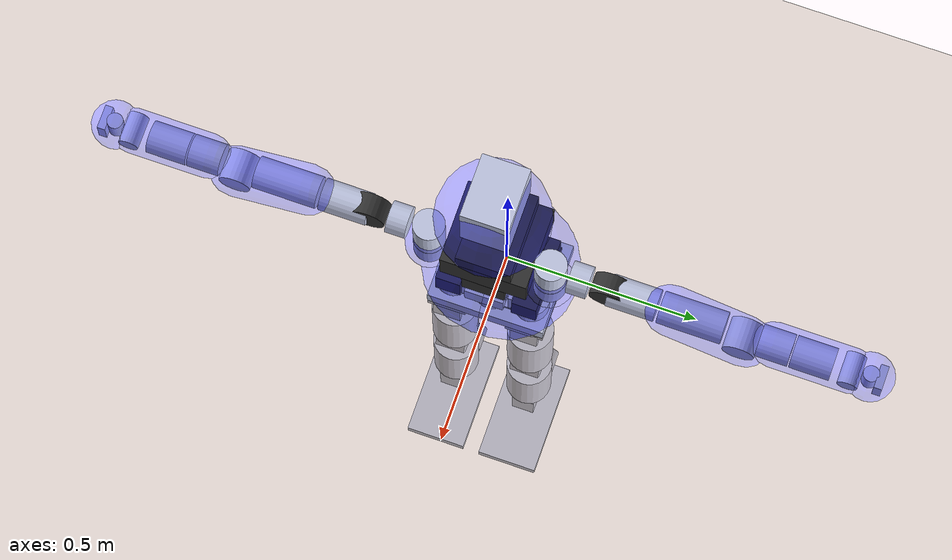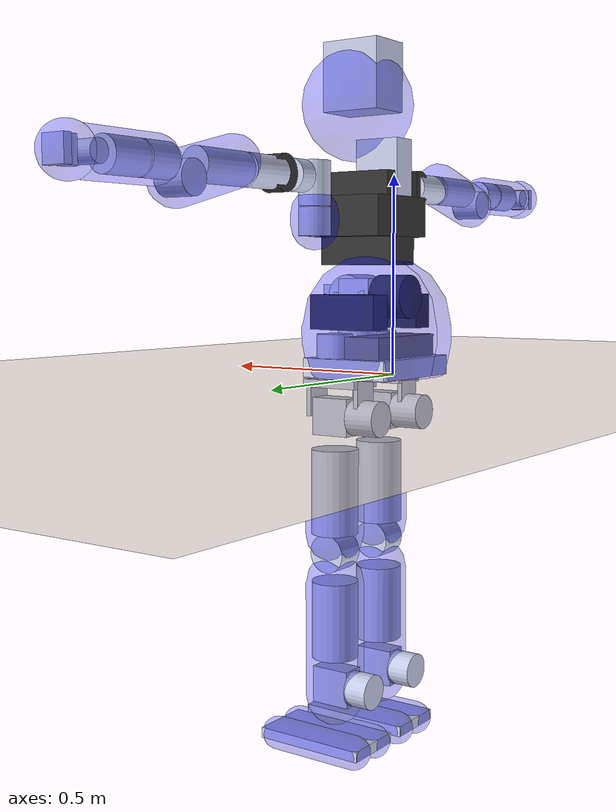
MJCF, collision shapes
<mujoco model="dyros_tocabi">
    <include file="simulation_scene.xml"/>

    <asset>
        <mesh name="Pelvis_link" file="Pelvis_link2.STL" scale="0.001 0.001 0.001"/>
        <mesh name="HipRoll_R_link" file="HipRoll_R_link.STL" />
        <mesh name="HipCenter_R_Link" file="HipCenter_R_Link.STL" />
        <mesh name="Thigh_R_Link" file="Thigh_R_Link.STL" />
        <mesh name="Knee_R_Link" file="Knee_R_Link.STL" />
        <mesh name="AnkleCenter_R_Link" file="AnkleCenter_R_Link.STL" />
        <mesh name="AnkleRoll_R_Link" file="AnkleRoll_R_Link.STL" />
        <mesh name="HipRoll_L_Link" file="HipRoll_L_Link.STL" />
        <mesh name="HipCenter_L_Link" file="HipCenter_L_Link.STL" />
        <mesh name="Thigh_L_Link" file="Thigh_L_Link.STL" />
        <mesh name="Knee_L_Link" file="Knee_L_Link.STL" />
        <mesh name="AnkleCenter_L_Link" file="AnkleCenter_L_Link.STL" />
        <mesh name="AnkleRoll_L_Link" file="AnkleRoll_L_Link.STL" />
        <mesh name="waist1" file="waistyaw.STL" scale="0.001 0.001 0.001"/>
        <mesh name="waist2" file="waist2.STL" />
        <mesh name="upperbody" file="upperbody.STL" />
        <mesh name="R_shoulder1" file="R_shoulder1.STL" />
        <mesh name="R_shoulder2" file="R_shoulder2.STL" />
        <mesh name="R_shoulder3" file="R_shoulder3.STL" />
        <mesh name="R_arm" file="R_arm.STL" />
        <mesh name="R_elbow" file="R_elbow.STL" />
        <mesh name="R_forearm" file="R_forearm.STL" />
        <mesh name="R_wrist1" file="R_wrist1.STL" />
        <mesh name="L_shoulder1" file="L_shoulder1.STL" />
        <mesh name="L_shoulder2" file="L_shoulder2.STL" />
        <mesh name="L_shoulder3" file="L_shoulder3.STL" />
        <mesh name="L_arm" file="L_arm.STL" />
        <mesh name="L_elbow" file="L_elbow.STL" />
        <mesh name="L_forearm" file="L_forearm.STL" />
        <mesh name="L_wrist1" file="L_wrist1.STL" />
        <mesh name="neck" file="neck.STL" />
        <mesh name="head" file="head.STL" scale="0.001 0.001 0.001"/>
        <mesh name="hand" file="wrist2joint.STL" scale="0.001 0.001 0.001"/>
        <mesh name="Foot_Link" file="Foot_Link.STL"/>

        <!--texture type="skybox" builtin="gradient" width="128" height="128" rgb1="1 1 1" rgb2="0 0 0"/-->
        <texture type="skybox" builtin="gradient" width="128" height="128" rgb1="0.4 0.6 0.8" rgb2="0 0 0"/>
        <texture name="texgeom" type="cube" builtin="flat" mark="cross" width="128" height="128" rgb1="0.6 0.6 0.6" rgb2="0.6 0.6 0.6" markrgb="1 1 1"/>
        <texture name="texplane" type="2d" builtin="checker" rgb1=".4 .4 .4" rgb2=".6 .6 .6" width="512" height="512"/>
        <material name='geom' texture="texgeom" texuniform="true"/>
        <material name='MatPlane' reflectance='0.3' texture="texplane" texrepeat="1 1" texuniform="true"/>
        <material name='MatPlane2' reflectance='0.3' />
    </asset>

    <worldbody>
        <geom name="ground" type="plane" pos="0 0 0" size="10 10 .05" rgba="0.7 0.6 0.5 1" material="MatPlane2" friction="0.8 0.8 0.8" group="3" contype="1" conaffinity="2"/>
        <light directional="true" diffuse=".8 .8 .8" pos="0 0 10" dir="0 0 -10"/>
        <light directional="true" diffuse=".3 .3 .3" pos="10 -10 5" dir="-10 10 -5"/>
        <body name="base_link">
            <joint name="virtual_joint" type="free" limited='false' frictionloss="0" damping="0" stiffness="0" armature="0"/>
            <inertial pos="0.07809 0 0.03985" mass="14.6343" fullinertia="0.101833182 0.072400662 0.144478157 -0.000070812 -0.003831096 0.000079272" />
            <geom class="viz" pos="0.11 0 0.02" rgba="0.20313 0.20313 0.20313 1" quat="0.5 0.5 0.5 0.5" mesh="Pelvis_link" />
            <geom size="0.045 0.044" pos="0.11 0 0.039" type="cylinder" class="cls"  contype="2" conaffinity="0"/>
            <geom size="0.045 0.055" pos="0.11 0.1025 0.05" type="cylinder" class="cls"  contype="2" conaffinity="0"/>
            <geom size="0.045 0.055" pos="0.11 -0.1025 0.05" type="cylinder" class="cls"  contype="2" conaffinity="0"/>
            <geom size="0.12 0.1525 0.025" pos="0.052 0 0.02" type="box" class="cls"  contype="2" conaffinity="0"/>
            <geom size="0.05 0.13 0.05" pos="0.01 0 0.05" type="box" group="1"/>
            <site name="Pelvis_IMU" type="cylinder" size="0.005 0.005" group="4" rgba=".1 .1 .9 1"/>
            <!-- Visualizing a CBF for Self Collision (Left Pelvis) -->
            <geom class="viz" name="Left_Pelvis" size = "0.18 0.025" pos="0.05 0.02 0.1" rgba="0 0 1 0.3" type="capsule"/>
            <!-- Visualizing a CBF for Self Collision (Right Pelvis) -->
            <geom class="viz" name="Right_Pelvis" size = "0.18 0.025" pos="0.05 -0.02 0.1" rgba="0 0 1 0.3" type="capsule"/>
            <body name="L_HipRoll_Link" pos="0.11 0.1025 -0.1025">
                <inertial pos="-0.06477 0 0.05149" mass="3.2148" fullinertia="0.01821 0.03121 0.2928 -1.676E-07 -0.0007745 -4.53E-09" />
                <joint name="L_HipYaw_Joint" pos="0 0 0" axis="0 0 1" limited="true" range="-3.14 3.14" class="shg20_100_2so"/>
                <geom class="viz" rgba="0.20313 0.20313 0.20313 1" mesh="HipRoll_L_Link" />
                <geom size="0.045 0.04" pos="-0.1 0 0" quat="0.707107 0 0.707107 0" type="cylinder" class="cls" contype="2" conaffinity="0"/>
                <geom size="0.077 0.05 0.01" pos="-0.016 0 0.085" type="box" class="cls" contype="2" conaffinity="0"/>
                <geom size="0.006 0.036 0.0475" pos="0.055 0 0.0475" type="box" class="cls" contype="2" conaffinity="0"/>
                <geom size="0.006 0.036 0.0475" pos="-0.087 0 0.0475" type="box" class="cls" contype="2" conaffinity="0"/>
                <body name="L_HipCenter_Link" pos="0 0 0">
                    <inertial pos="-0.04801 0.0022 2e-05" mass="3.204" fullinertia="0.3553 0.009161 0.00876 1.725E-08 -3.236E-06 -4.778E-06" />
                    <joint name="L_HipRoll_Joint" pos="0 0 0" axis="1 0 0" limited="true" range="-3.14 3.14" class="shg20_100_2so"/>
                    <geom class="viz" rgba="0.20313 0.20313 0.20313 1" mesh="HipCenter_L_Link" />
                    <geom size="0.05225 0.03 0.0475" pos="-0.0045 0 0" type="box" class="cls" contype="2" conaffinity="0"/>
                    <body name="L_Thigh_Link" pos="0 0 0">
                        <inertial pos="-0.00042 0.00032 -0.18904" mass="6.4392" fullinertia="0.2987 0.7088 0.00982 -4.284E-05 -0.000196 0.002406" />
                        <joint name="L_HipPitch_Joint" pos="0 0 0" axis="0 1 0" limited="true" range="-3.14 3.14" class="shg20_100_2so"/>
                        <geom class="viz" rgba="0.85938 0.07813 0.23438 1" mesh="Thigh_L_Link" />
                        <geom class="cls" size="0.049 0.038815" pos="0 0 -0.35" quat="0.707107 0.707107 0 0" type="cylinder" contype="2" conaffinity="0"/>
                        <geom class="cls" size="0.06 0.10875" pos="0 0 -0.1923" type="cylinder" contype="2" conaffinity="0"/>
                        <geom class="viz" size="0.033 0.02 0.06875" pos="0 0 -0.1723" type="box" rgba="0.20313 0.20313 0.20313 1" />
                        <!-- Visualizing a CBF for Self Collision (Left Upper Leg) -->
                        <geom class="viz" name="Left_Upper_Leg" size ="0.075 0.17" pos="0 0 -0.1323" rgba="0 0 1 0.3" type="capsule" />
                        <body name="L_Knee_Link" pos="0 0 -0.35">
                            <inertial pos="0.00429 -0.00214 -0.1428" mass="4.6596" fullinertia="0.1506 0.5588 0.007451 -2.887E-05 -0.002607 -0.001486" />
                            <joint name="L_Knee_Joint" pos="0 0 0" axis="0 1 0" limited="true" range="-3.14 3.14" class="shg20_100_2so"/>
                            <geom class="viz" rgba="0.85938 0.07813 0.23438 1" mesh="Knee_L_Link" />
                            <geom class="cls" size="0.06 0.1" pos="0 0 -0.175" type="cylinder" contype="2" conaffinity="0"/>
                            <geom class="viz" size="0.028 0.02 0.06875" pos="0 0 -0.1603" type="box" rgba="0.20313 0.20313 0.20313 1" />
                            <!-- Visualizing a CBF for Self Collision (Left Lower Leg) -->
                            <geom class="viz" name="Left_Lower_Leg" size ="0.075 0.15" pos="0 0 -0.23" rgba="0 0 1 0.3" type="capsule" />
                            <body name="L_AnkleCenter_Link" pos="0 0 -0.35">
                                <inertial pos="-0.00419 0.0018 -0.0003" mass="3.012" fullinertia="0.002857 0.4135 0.003345 -1.422E-07 2.222E-06 4.611E-06" />
                                <joint name="L_AnklePitch_Joint" pos="0 0 0" axis="0 1 0" limited="true" range="-3.14 3.14" class="shg20_100_2so"/>
                                <geom class="viz" rgba="0.20313 0.20313 0.20313 1" mesh="AnkleCenter_L_Link" />
                                <geom class="cls" size="0.05225 0.03 0.0475" pos="-0.0045 0 0" type="box"  contype="2" conaffinity="0"/>
                                <body name="L_AnkleRoll_Link" pos="0 0 0">
                                    <inertial pos="-0.05196 0.00005 -0.0219" mass="1.517112" fullinertia="0.418697 0.006211405 0.008575514 1.5176E-08 -0.001095976 -5.435E-08" />
                                    <joint name="L_AnkleRoll_Joint" pos="0 0 0" axis="1 0 0" limited="true" range="-3.14 3.14" class="shd20_100_2sh"/>
                                    <geom class="viz" rgba="0.85938 0.07813 0.23438 1" mesh="AnkleRoll_L_Link" />
                                    <geom class="cls" size="0.045 0.03125" pos="-0.08875 0 0" quat="0.707107 0 -0.707107 0" type="cylinder" contype="2" conaffinity="0"/>
                                    <body name="L_Foot_Link" pos="0 0 0">
                                        <inertial pos="0.0162 8e-05 -0.1209" mass="2.7912" fullinertia="0.003386409 0.012600125 0.014296 1.1237E-05 -0.000526477 -1.976E-06" />
                                        <geom class="viz" rgba="0.85938 0.07813 0.23438 1" mesh="Foot_Link" />
                                        <geom class="cls" size="0.15 0.080 0.0135" pos="0.03 0 -0.145" type="box" contype="2" conaffinity="0"/>
                                        <geom class="cls" size="0.045 0.03125" pos="-0.08875 0 0" quat="0.707107 0 -0.707107 0" type="cylinder" contype="2" conaffinity="0"/>
                                        <site class="FTsensor" name="LF_FT" pos="0 0 -0.09"/>
                                        <!-- Visualizing a CBF for Self Collision (Left Inner Foot) -->
                                        <geom class="viz" name="Left_Inner_Foot" size ="0.0432 0.12" pos="0.03 -0.0455 -0.15" quat="0.707107 0 -0.707107 0" rgba="0 0 1 0.3" type="capsule" />
                                        <!-- Visualizing a CBF for Self Collision (Left Outer Foot) -->
                                        <geom class="viz" name="Left_Outer_Foot" size ="0.0432 0.12" pos="0.03 0.0455 -0.15" quat="0.707107 0 -0.707107 0" rgba="0 0 1 0.3" type="capsule" />
                                    </body>
                                </body>
                            </body>
                        </body>
                    </body>
                </body>
            </body>

            <body name="R_HipRoll_Link" pos="0.11 -0.1025 -0.1025">
                <inertial pos="-0.06477 0 0.05149" mass="3.2148" fullinertia="0.01821 0.03121 0.2928 -1.676E-07 -0.0007745 -4.53E-09" />
                <joint name="R_HipYaw_Joint" pos="0 0 0" axis="0 0 1" limited="true" range="-3.14 3.14" class="shg20_100_2so"/>
                <geom class="viz" rgba="0.20313 0.20313 0.20313 1" mesh="HipRoll_R_link" />
                <geom class="cls" size="0.045 0.04" pos="-0.1 0 0" quat="0.707107 0 0.707107 0" type="cylinder" contype="2" conaffinity="0"/>
                <geom class="cls" size="0.077 0.05 0.01" pos="-0.016 0 0.085" type="box" contype="2" conaffinity="0"/>
                <geom class="cls" size="0.006 0.036 0.0475" pos="0.055 0 0.0475" type="box" contype="2" conaffinity="0"/>
                <geom class="cls" size="0.006 0.036 0.0475" pos="-0.087 0 0.0475" type="box" contype="2" conaffinity="0"/>
                <body name="R_HipCenter_Link" pos="0 0 0">
                    <inertial pos="-0.04801 -0.0022 2e-05" mass="3.204" fullinertia="0.3553 0.009161 0.00876 1.725E-08 -3.236E-06 -4.778E-06" />
                    <joint name="R_HipRoll_Joint" pos="0 0 0" axis="1 0 0" limited="true" range="-3.14 3.14" class="shg20_100_2so"/>
                    <geom class="viz" rgba="0.20313 0.20313 0.20313 1" mesh="HipCenter_R_Link" />
                    <geom class="cls" size="0.05225 0.03 0.0475" pos="-0.0045 0 0" type="box" contype="2" conaffinity="0"/>
                    <body name="R_Thigh_Link" pos="0 0 0">
                        <inertial pos="-0.00042 -0.00032 -0.18904" mass="6.4392" fullinertia="0.2987 0.7088 0.00982 -4.284E-05 -0.000196 0.002406" />
                        <joint name="R_HipPitch_Joint" pos="0 0 0" axis="0 1 0" limited="true" range="-3.14 3.14" class="shg20_100_2so"/>
                        <geom class="viz" rgba="0.85938 0.07813 0.23438 1" mesh="Thigh_R_Link" />
                        <geom class="cls" size="0.049 0.038815" pos="0 0 -0.35" quat="0.707107 0.707107 0 0" type="cylinder" contype="2" conaffinity="0"/>
                        <geom class="cls" size="0.06 0.10875" pos="0 0 -0.1923" type="cylinder" contype="2" conaffinity="0"/>
                        <geom class="viz" size="0.033 0.02 0.06875" pos="0 0 -0.1723" type="box" rgba="0.20313 0.20313 0.20313 1" />
                        <!-- Visualizing a CBF for Self Collision (Right Upper Leg) -->
                        <geom class="viz" name="Right_Upper_Leg" size ="0.075 0.17" pos="0 0 -0.1323" rgba="0 0 1 0.3" type="capsule" />
                        <body name="R_Knee_Link" pos="0 0 -0.35">
                            <inertial pos="0.00429 0.00214 -0.1428" mass="4.6596" fullinertia="0.1506 0.5588 0.007451 -2.887E-05 -0.002607 -0.001486" />
                            <joint name="R_Knee_Joint" pos="0 0 0" axis="0 1 0" limited="true" range="-3.14 3.14" class="shg20_100_2so"/>
                            <geom class="viz" rgba="0.85938 0.07813 0.23438 1" mesh="Knee_R_Link" />
                            <geom class="cls" size="0.06 0.1" pos="0 0 -0.175" type="cylinder" contype="2" conaffinity="0"/>
                            <geom class="viz" size="0.028 0.02 0.06875" pos="0 0 -0.1603" type="box" rgba="0.20313 0.20313 0.20313 1" />
                            <!-- Visualizing a CBF for Self Collision (Right Lower Leg) -->
                            <geom class="viz" name="Right_Lower_Leg" size ="0.075 0.15" pos="0 0 -0.23" rgba="0 0 1 0.3" type="capsule" />
                            <body name="R_AnkleCenter_Link" pos="0 0 -0.35">
                                <inertial pos="-0.00419 -0.0018 -0.0003" mass="3.012" fullinertia="0.002857 0.4135 0.003345 -1.422E-07 2.222E-06 4.611E-06" />
                                <joint name="R_AnklePitch_Joint" pos="0 0 0" axis="0 1 0" limited="true" range="-3.14 3.14" class="shg20_100_2so"/>
                                <geom class="viz" rgba="0.20313 0.20313 0.20313 1" mesh="AnkleCenter_R_Link" />
                                <geom class="cls" size="0.05225 0.03 0.0475" pos="-0.0045 0 0" type="box" contype="2" conaffinity="0"/>
                                <body name="R_AnkleRoll_Link" pos="0 0 0">
                                    <inertial pos="-0.05196 0.00005 -0.0219" mass="1.517112" fullinertia="0.418697 0.006211405 0.008575514 1.5176E-08 -0.001095976 -5.435E-08" />
                                    <joint name="R_AnkleRoll_Joint" pos="0 0 0" axis="1 0 0" limited="true" range="-3.14 3.14" class="shd20_100_2sh"/>
                                    <geom class="viz" rgba="0.85938 0.07813 0.23438 1" mesh="AnkleRoll_R_Link" />
                                    <geom class="cls" size="0.045 0.03125" pos="-0.08875 0 0" quat="0.707107 0 -0.707107 0" type="cylinder" contype="2" conaffinity="0"/>
                                    <body name="R_Foot_Link" pos="0 0 0">
                                        <inertial pos="0.0162 8e-05 -0.1209" mass="2.7912" fullinertia="0.003386409 0.012600125 0.014296 1.1237E-05 -0.000526477 -1.976E-06" />
                                        <geom class="viz" rgba="0.85938 0.07813 0.23438 1" mesh="Foot_Link" />
                                        <geom class="cls" size="0.15 0.080 0.0135" pos="0.03 0 -0.145" type="box" contype="2" conaffinity="0"/>
                                        <geom class="cls" size="0.045 0.03125" pos="-0.08875 0 0" quat="0.707107 0 -0.707107 0" type="cylinder"  contype="2" conaffinity="0"/>
                                        <site class="FTsensor" name="RF_FT" pos="0 0 -0.09"/>
                                        <!-- Visualizing a CBF for Self Collision (Right Inner Foot) -->
                                        <geom class="viz" name="Right_Inner_Foot" size ="0.0432 0.12" pos="0.03 0.0455 -0.15" quat="0.707107 0 -0.707107 0" rgba="0 0 1 0.3" type="capsule" />
                                        <!-- Visualizing a CBF for Self Collision (Right Outer Foot) -->
                                        <geom class="viz" name="Right_Outer_Foot" size ="0.0432 0.12" pos="0.03 -0.0455 -0.15" quat="0.707107 0 -0.707107 0" rgba="0 0 1 0.3" type="capsule" />
                                    </body>
                                </body>
                            </body>
                        </body>
                    </body>
                </body>
            </body>

            <body name="Waist1_Link" pos="0.11 0 0.1979">
                <inertial pos="0 0 -0.03647" mass="1.076664" fullinertia="0.003744227 0.002030963 1.007723743 -0.000023489 0.000037149 -0.000424890" />
                <joint name="Waist1_Joint" pos="0 0 0" axis="0 0 1" limited="true" range="-2.094 2.094" class="shg25_100_2so"/>
                <geom class="viz" rgba="0.85938 0.07813 0.23438 1" pos="0 0 -0.085" quat="0 0.707107 0 0.707107" mesh="waist1" />
                <geom class="cls" size="0.05 0.01" pos="0 0 -0.096" type="cylinder" contype="2" conaffinity="0"/>
                <geom class="cls" size="0.047 0.065 0.005" pos="0 0 -0.081" type="box" contype="2" conaffinity="0"/>
                <geom class="cls" size="0.047 0.005 0.0455" pos="0 0.06 -0.0405" type="box" contype="2" conaffinity="0"/>
                <geom class="cls" size="0.047 0.005 0.0455" pos="0 -0.06 -0.0405" type="box" contype="2" conaffinity="0"/>

                <geom class="viz" size="0.095 0.032 0.0435" pos="-0.04 -0.099 -0.038" rgba="0.20313 0.20313 0.20313 1" type="box"/>
                <geom class="viz" size="0.095 0.032 0.0435" pos="-0.04 0.099 -0.038" rgba="0.20313 0.20313 0.20313 1" type="box"/>

                <body name="Waist2_Link" pos="0 0 0">
                    <inertial pos="-0.00029 0 0" mass="4.5024" fullinertia="0.006020606 1.011708561 0.007561688 0.000011504 -0.000000053 0.000001147" />
                    <joint name="Waist2_Joint" pos="0 0 0" axis="0 1 0" limited="true" range="-2.094 2.094" class="shg25_100_2so"/>
                    <geom class="viz" rgba="0.20313 0.20313 0.20313 1" mesh="waist2" />
                    <geom class="cls" size="0.055 0.05" quat="0.707107 0.707107 0 0" type="cylinder" contype="2" conaffinity="0"/>
                    <geom class="cls" size="0.05 0.05 0.03" pos="0.02 0 0" type="box" contype="2" conaffinity="0"/>
                    <geom class="cls" size="0.045 0.05 0.0455" pos="-0.02 0 0" type="box" contype="2" conaffinity="0"/>
                    <body name="Upperbody_Link" pos="0 0 0">
                        <inertial pos="-0.07294 0 0.16798" quat="0.999909 -0.000268355 -0.0135223 5.11667e-05" mass="21.76056" diaginertia="0.563198 0.563198 0.563198" />
                        <joint name="Upperbody_Joint" pos="0 0 0" axis="-1 0 0" limited="true" range="-2.094 2.094" class="shg25_100_2so"/>
                        <geom class="viz" rgba="0.85938 0.07813 0.23438 1" mesh="upperbody" />
                        <geom class="viz" size="0.105 0.11 0.05" pos="-0.03 0 0.2" type="box" rgba="0.20313 0.20313 0.20313 1" />
                        <geom class="viz" size="0.105 0.055 0.035" pos="-0.03 0 0.115" type="box" rgba="0.20313 0.20313 0.20313 1" />
                        <geom class="viz" size="0.105 0.07 0.03" pos="-0.03 0 0.28" type="box" rgba="0.20313 0.20313 0.20313 1" />
                        <geom class="cls" size="0.105 0.11 0.05" pos="-0.03 0 0.2" type="box"  contype="2" conaffinity="0"/>
                        <geom class="cls" size="0.105 0.055 0.035" pos="-0.03 0 0.115" type="box" contype="2" conaffinity="0"/>
                        <geom class="cls" size="0.105 0.07 0.03" pos="-0.03 0 0.28" type="box" contype="2" conaffinity="0"/>
                        <geom class="cls" size="0.06 0.035 0.07" pos="-0.08 0 0.32" type="box" contype="2" conaffinity="0"/>
                        <geom class="viz" size="0.054 0.045" pos="-0.115 0 0" quat="0.707107 0 0.707107 0" type="cylinder" rgba="0.20313 0.20313 0.20313 1" />
                        <geom class="cls" size="0.04 0.035" pos="0.023 0.154 0.185" type="cylinder" contype="2" conaffinity="0"/>
                        <geom class="cls" size="0.04 0.035" pos="0.023 -0.154 0.185" type="cylinder" contype="2" conaffinity="0"/>
                        <!-- Visualizing a CBF for Self Collision (Left Upper Body) -->
                        <geom class="viz" name="Left_Upper_Body" size="0.06 0.015" pos="0.023 0.154 0.19" rgba="0 0 1 0.3" type="capsule"/>
                        <!-- Visualizing a CBF for Self Collision (Right Upper Body) -->
                        <geom class="viz" name="Right_Upper_Body" size="0.06 0.015" pos="0.023 -0.154 0.19" rgba="0 0 1 0.3" type="capsule"/>

                        <body name="L_Shoulder1_Link" pos="0.023 0.154 0.2275">
                            <inertial pos="-3e-05 0.00397 0.06029" mass="2.01144" fullinertia="0.001925606 0.001936576 0.185330098 0.000001433 0.000002313 0.000078962" />
                            <joint name="L_Shoulder1_Joint" pos="0 0 0" axis="0 0 1" limited="true" range="-2.09 1.54" class="shg17_100_2so"/>
                            <geom class="viz" rgba="0.85938 0.07813 0.23438 1" mesh="L_shoulder1" />
                            <geom class="cls" size="0.04 0.055" pos="0 0 0.05" type="cylinder" contype="2" conaffinity="0"/>
                            <body name="L_Shoulder2_Link" pos="0 0.0341 0.065">
                                <inertial pos="0.00107 0.0491 -1e-05" mass="0.48192" fullinertia="0.000989903 0.184275853 0.001067575 0.000028237 -0.000000465 0.000000133" />
                                <joint name="L_Shoulder2_Joint" pos="0 0 0" axis="0 1 0" limited="true" range="-3.14159 3.14159" class="shg17_100_2so"/>
                                <geom class="viz" rgba="0.20313 0.20313 0.20313 1" mesh="L_shoulder2" />
                                <geom class="cls" size="0.04 0.025" pos="0 0.04 0" quat="0.707107 0.707107 0 0" type="cylinder" contype="2" conaffinity="0"/>
                                <body name="L_Shoulder3_Link" pos="0 0.115 0">
                                    <inertial pos="0.00262 0.04826 0.00023" mass="3.481692" fullinertia="0.192093159 0.002493784 0.008296854 -0.000365084 -0.000002746 -0.000023821" />
                                    <joint name="L_Shoulder3_Joint" pos="0 0 0" axis="-1 0 0" limited="true" range="-1.9199 1.9199" class="shg17_100_2so"/>
                                    <geom class="viz" rgba="0.20313 0.20313 0.20313 1" mesh="L_shoulder3" />
                                    <geom class="cls" size="0.04 0.06" pos="0 0.06 0" quat="0.707107 0.707107 0 0" type="cylinder" contype="2" conaffinity="0"/>
                                    <geom size="0.045 0.027" pos="0 0 0" quat="0.707107 0 0.707107 0" rgba="0.20313 0.20313 0.20313 1" type="cylinder" class="viz"/>
                                    <body name="L_Armlink_Link" pos="0 0.1281 0">
                                        <inertial pos="-0.01896 0.11642 -0.0119" mass="0.702204" fullinertia="0.002878609 0.184381923 0.003117058 0.000302586 -0.000036001 0.000398377" />
                                        <joint name="L_Armlink_Joint" pos="0 0 0" axis="0 1 0" limited="true" range="-3.14159 3.14159" class="shg17_100_2so"/>
                                        <geom class="viz" rgba="0.85938 0.07813 0.23438 1" mesh="L_arm" />
                                        <geom class="cls" size="0.04 0.08" pos="0 0.08 0" quat="0.707107 0.707107 0 0" type="cylinder" contype="2" conaffinity="0"/>
                                        <!-- Visualizing a CBF for Self Collision (Left Upper Arm) -->
                                        <geom class="viz" name="Left_Upper_Arm" size ="0.062 0.1" pos="0.005 0.12 -0.01" quat="0.793353 0.608761 0 0" rgba="0 0 1 0.3" type="capsule" />
                                        <body name="L_Elbow_Link" pos="0 0.207 -0.0325">
                                            <inertial pos="-0.00136 0.05256 0.01764" mass="2.478132" fullinertia="0.055865466 0.001895543 0.005958821 0.000151764 0.000055158 0.001530917" />
                                            <joint name="L_Elbow_Joint" pos="0 0 0" axis="1 0 0" limited="true" range="-3.14159 2.8" class="shg14_100_2so"/>
                                            <geom class="viz" rgba="0.20313 0.20313 0.20313 1" mesh="L_elbow" />
                                            <geom class="cls" size="0.04 0.04" pos="0 0.08 0.0325" quat="0.707107 0.707107 0 0" type="cylinder" contype="2" conaffinity="0"/>
                                            <geom class="cls" size="0.04 0.04" quat="0.707107 0 0.707107 0" type="cylinder" contype="2" conaffinity="0"/>
                                            <geom size="0.034 0.025" pos="0.003 0 0" quat="0.707107 0 0.707107 0" rgba="0.20313 0.20313 0.20313 1" type="cylinder" class="viz"/>
                                            <body name="L_Forearm_Link" pos="0 0.1244 0.0325">
                                                <inertial pos="-0.01426 0.0767 0.00033" mass="0.422808" fullinertia="0.001053636 0.049889479 0.001266418 0.000084568 0.000022117 0.000019539" />
                                                <joint name="L_Forearm_Joint" pos="0 0 0" axis="0 1 0" limited="true" range="-3.14159 3.14159" class="shg14_100_2so"/>
                                                <geom class="viz" rgba="0.85938 0.07813 0.23438 1" mesh="L_forearm" />
                                                <geom class="cls" size="0.04 0.05" pos="0 0.05 0" quat="0.707107 0.707107 0 0" type="cylinder" contype="2" conaffinity="0"/>
                                                <geom class="cls" size="0.025 0.04" pos="0 0.1451 0" quat="0.707107 0 0.707107 0" type="cylinder" contype="2" conaffinity="0"/>
                                                <!-- Visualizing a CBF for Self Collision (Left Forearm) -->
                                                <geom class="viz" name="Left_ForeArm" size ="0.055 0.1" pos="0 0.05 0" quat="0.707107 0.707107 0 0" rgba="0 0 1 0.3" type="capsule" />
                                                <body name="L_Wrist1_Link" pos="0 0.1451 0">
                                                    <inertial pos="-0.00158 0.02153 3e-05" mass="0.851076" fullinertia="0.015205197 0.000396376 0.000683187 0.000024218 -0.000000263 0.000000688" />
                                                    <joint name="L_Wrist1_Joint" pos="0 0 0" axis="1 0 0" limited="true" range="-3.14159 3.14159" class="csf_11_100_2xh_f"/>
                                                    <geom class="viz" rgba="0.20313 0.20313 0.20313 1" mesh="L_wrist1" />
                                                    <geom size="0.02 0.03" pos="0 0.046 0" type="cylinder" class="cls"  contype="2" conaffinity="0"/>
                                                    <body name="L_Wrist2_Link" pos="0 0.046 0" quat="0 0 -0.707107 0.707107">
                                                        <inertial pos="0.00063 0.0636 0.00178" mass="0.12" fullinertia="0.000865450 0.000696917 0.015377823 0 0 0" />
                                                        <joint name="L_Wrist2_Joint" pos="0 0 0" axis="0 1 0" limited="true" range="-2.094 2.094" class="csf_11_100_2xh_f"/>
                                                        <geom size="0.03 0.03 0.01" pos="0 0 -0.025" type="box" class="cls" contype="2" conaffinity="0"/>
                                                        <geom size="0.03 0.03 0.01" pos="0 0 -0.025" type="box" class="viz" rgba="0.20313 0.20313 0.20313 1" />
                                                        <site class="FTsensor" name="LH_FT" pos="0 0 -0.035"/>
                                                        <!-- Visualizing a CBF for Self Collision (Left Hand) -->
                                                        <geom class="viz" name="Left_Hand" size="0.06" rgba="0 0 1 0.3" type="sphere"/>
                                                    </body>
                                                </body>
                                            </body>
                                        </body>
                                    </body>
                                </body>
                            </body>
                        </body>
                        <body name="Neck_Link" pos="-0.036 0 0.3795">
                            <inertial pos="0 0 -0.0023" mass="0.2976" fullinertia="0.000058259 0.000036489 0.000058237 -0.000000076 0.000000268 -0.000001002" />
                            <joint name="Neck_Joint" pos="0 0 0" axis="0 0 1" limited="true" range="-1.54 1.54" class="csf_11_100_2xh_f"/>
                            <geom class="viz" rgba="0.20313 0.20313 0.20313 1" mesh="neck" />
                            <body name="Head_Link" pos="0 0 0.0275">
                                <inertial pos="0.037 0 0.071" mass="1.7004" fullinertia="0.0079 0.012 0.01 0.0 0.0025 0.0" />
                                <joint name="Head_Joint" pos="0 0 0" axis="0 1 0" limited="true" range="-1.54 1.54" class="csf_11_100_2xh_f"/>
                                <geom class="viz" rgba="0.85938 0.07813 0.23438 1" pos="0.02 0 -0.6" mesh="head" />
                                <geom class="cls" size="0.08 0.06 0.086" pos="0.02 0 0.14" type="box"  contype="2" conaffinity="0"/>
                                <!-- Visualizing a CBF for Self Collision (Head) -->
                                <geom class="viz" name="Head" size="0.142" pos="0.035 0 0.0735" rgba="0 0 1 0.3" type="sphere"/>
                            </body>
                        </body>
                        <body name="R_Shoulder1_Link" pos="0.023 -0.154 0.2275">
                            <inertial pos="-3e-05 -0.00397 0.06029" mass="2.01144" fullinertia="0.001925606 0.001936576 0.185330098 -0.000001433 0.000002313 -0.000078962" />
                            <joint name="R_Shoulder1_Joint" pos="0 0 0" axis="0 0 1" limited="true" range="-1.54 2.09" class="shg17_100_2so"/>
                            <geom class="viz" rgba="0.85938 0.07813 0.23438 1" mesh="R_shoulder1" />
                            <geom size="0.04 0.055" pos="0 0 0.05" type="cylinder" class="cls"  contype="2" conaffinity="0"/>
                            <body name="R_Shoulder2_Link" pos="0 -0.0341 0.065">
                                <inertial pos="0.00107 -0.0491 -1e-05" mass="0.48192" fullinertia="0.000989903 0.184275853 0.001067575 -0.000028237 -0.000000465 -0.000000133" />
                                <joint name="R_Shoulder2_Joint" pos="0 0 0" axis="0 -1 0" limited="true" range="-3.14159 3.14159" class="shg17_100_2so"/>
                                <geom class="viz" rgba="0.20313 0.20313 0.20313 1" mesh="R_shoulder2" />
                                <geom size="0.04 0.025" pos="0 -0.04 0" quat="0.707107 0.707107 0 0" type="cylinder" class="cls"  contype="2" conaffinity="0"/>
                                <body name="R_Shoulder3_Link" pos="0 -0.115 0">
                                    <inertial pos="0.00262 -0.04826 0.00023" mass="3.481692" fullinertia="0.192093159 0.002493784 0.008296854 0.000365084 -0.000002746 0.000023821" />
                                    <joint name="R_Shoulder3_Joint" pos="0 0 0" axis="-1 0 0" limited="true" range="-1.9199 1.9199" class="shg17_100_2so"/>
                                    <geom class="viz" rgba="0.20313 0.20313 0.20313 1" mesh="R_shoulder3" />
                                    <geom size="0.04 0.06" pos="0 -0.06 0" quat="0.707107 0.707107 0 0" type="cylinder" class="cls"  contype="2" conaffinity="0"/>
                                    <geom size="0.045 0.027" pos="0 0 0" quat="0.707107 0 0.707107 0" rgba="0.20313 0.20313 0.20313 1" type="cylinder" class="viz"/>
                                    <body name="R_Armlink_Link" pos="0 -0.1281 0">
                                        <inertial pos="-0.01896 -0.11642 -0.0119" mass="0.702204" fullinertia="0.002878609 0.184381923 0.003117058 -0.000302586 -0.000036001 -0.000398377" />
                                        <joint name="R_Armlink_Joint" pos="0 0 0" axis="0 -1 0" limited="true" range="-3.14159 3.14159" class="shg17_100_2so"/>
                                        <geom class="viz" rgba="0.85938 0.07813 0.23438 1" mesh="R_arm" />
                                        <geom size="0.04 0.08" pos="0 -0.08 0" quat="0.707107 0.707107 0 0" type="cylinder" class="cls"  contype="2" conaffinity="0"/>
                                        <!-- Visualizing a CBF for Self Collision (Right Upper Arm) -->
                                        <geom class="viz" name="Right_Upper_Arm" size ="0.062 0.1" pos="0.005 -0.12 -0.01" quat="0.793353 -0.608761 0 0" rgba="0 0 1 0.3" type="capsule" />
                                        <body name="R_Elbow_Link" pos="0 -0.207 -0.0325">
                                            <inertial pos="-0.00136 -0.05256 0.01764" mass="2.478132" fullinertia="0.055865466 0.001895543 0.005958821 -0.000151764 0.000055158 -0.001530917" />
                                            <joint name="R_Elbow_Joint" pos="0 0 0" axis="1 0 0" limited="true" range="-2.967 3.14159" class="shg14_100_2so"/>
                                            <geom class="viz" rgba="0.20313 0.20313 0.20313 1" mesh="R_elbow" />
                                            <geom size="0.04 0.04" pos="0 -0.08 0.0325" quat="0.707107 0.707107 0 0" type="cylinder" class="cls"  contype="2" conaffinity="0"/>
                                            <geom size="0.04 0.04" quat="0.707107 0 0.707107 0" type="cylinder" class="cls"  contype="2" conaffinity="0"/>
                                            <geom size="0.034 0.025" pos="0.003 0 0" quat="0.707107 0 0.707107 0" rgba="0.20313 0.20313 0.20313 1" type="cylinder" class="viz"/>
                                            <body name="R_Forearm_Link" pos="0 -0.1244 0.0325">
                                                <inertial pos="-0.01426 -0.0767 0.00033" mass="0.422808" fullinertia="0.001053636 0.049889479 0.001266418 -0.000084568 0.000022117 -0.000019539" />
                                                <joint name="R_Forearm_Joint" pos="0 0 0" axis="0 -1 0" limited="true" range="-3.14159 3.14159" class="shg14_100_2so"/>
                                                <geom class="viz" rgba="0.85938 0.07813 0.23438 1" mesh="R_forearm" />
                                                <geom size="0.04 0.05" pos="0 -0.05 0" quat="0.707107 0.707107 0 0" type="cylinder" class="cls"  contype="2" conaffinity="0"/>
                                                <geom size="0.025 0.04" pos="0 -0.1451 0" quat="0.707107 0 0.707107 0" type="cylinder" class="cls"  contype="2" conaffinity="0"/>
                                                <!-- Visualizing a CBF for Self Collision (Right Forearm) -->
                                                <geom class="viz" name="Right_ForeArm" size ="0.055 0.1" pos="0 -0.05 0" quat="0.707107 0.707107 0 0" rgba="0 0 1 0.3" type="capsule" />
                                                <body name="R_Wrist1_Link" pos="0 -0.1451 0">
                                                    <inertial pos="-0.00158 -0.02153 3e-05" mass="0.851076" fullinertia="0.015205197 0.000396376 0.000683187 -0.000024218 -0.000000263 -0.000000688" />
                                                    <joint name="R_Wrist1_Joint" pos="0 0 0" axis="1 0 0" limited="true" range="-3.14159 3.14159" class="csf_11_100_2xh_f"/>
                                                    <geom class="viz" rgba="0.20313 0.20313 0.20313 1" mesh="R_wrist1" />
                                                    <geom size="0.02 0.03" pos="0 -0.046 0" type="cylinder" class="cls"  contype="2" conaffinity="0"/>
                                                    <body name="R_Wrist2_Link" pos="0 -0.046 0" quat="0 0 0.707107 0.707107">
                                                        <inertial pos="0.00063 -0.0636 0.00178" quat="0.5 0.5 -0.5 0.5" mass="0.12" fullinertia="0.000865450 0.000696917 0.015377823 0 0 0" />
                                                        <joint name="R_Wrist2_Joint" pos="0 0 0" axis="0 -1 0" limited="true" range="-2.094 2.094" class="csf_11_100_2xh_f"/>
                                                        <geom size="0.03 0.03 0.01" pos="0 0 -0.025" type="box" class="cls"  contype="2" conaffinity="0"/>
                                                        <geom size="0.03 0.03 0.01" pos="0 0 -0.025" type="box" class="viz" rgba="0.20313 0.20313 0.20313 1" />
                                                        <site class="FTsensor" name="RH_FT" pos="0 0 -0.035"/>
                                                        <!-- Visualizing a CBF for Self Collision (Right Hand) -->
                                                        <geom class="viz" name="Right_Hand" size="0.06" rgba="0 0 1 0.3" type="sphere"/>
                                                    </body>
                                                </body>
                                            </body>
                                        </body>
                                    </body>
                                </body>
                            </body>
                        </body>
                    </body>
                </body>
            </body>
        </body>

    </worldbody>
    <actuator>
        <motor name="L_HipYaw_Motor" joint="L_HipYaw_Joint" ctrlrange="-333 333"/>
        <motor name="L_HipRoll_Motor" joint="L_HipRoll_Joint" ctrlrange="-232 232"/>
        <motor name="L_HipPitch_Motor" joint="L_HipPitch_Joint" ctrlrange="-263 263"/>
        <motor name="L_Knee_Motor" joint="L_Knee_Joint" ctrlrange="-289 289"/>
        <motor name="L_AnklePitch_Motor" joint="L_AnklePitch_Joint" ctrlrange="-222 222"/>
        <motor name="L_AnkleRoll_Motor" joint="L_AnkleRoll_Joint" ctrlrange="-166 166"/>

        <motor name="R_HipYaw_Motor" joint="R_HipYaw_Joint" ctrlrange="-333 333"/>
        <motor name="R_HipRoll_Motor" joint="R_HipRoll_Joint" ctrlrange="-232 232"/>
        <motor name="R_HipPitch_Motor" joint="R_HipPitch_Joint" ctrlrange="-263 263"/>
        <motor name="R_Knee_Motor" joint="R_Knee_Joint" ctrlrange="-289 289"/>
        <motor name="R_AnklePitch_Motor" joint="R_AnklePitch_Joint" ctrlrange="-222 222"/>
        <motor name="R_AnkleRoll_Motor" joint="R_AnkleRoll_Joint" ctrlrange="-166 166"/>

        <motor name="Waist1_Motor" joint="Waist1_Joint" ctrlrange="-303 303"/>
        <motor name="Waist2_Motor" joint="Waist2_Joint" ctrlrange="-303 303"/>
        <motor name="Upperbody_Motor" joint="Upperbody_Joint" ctrlrange="-303 303"/>

        <motor name="L_Shoulder1_Motor" joint="L_Shoulder1_Joint" ctrlrange="-64 64"/>
        <motor name="L_Shoulder2_Motor" joint="L_Shoulder2_Joint" ctrlrange="-64 64"/>
        <motor name="L_Shoulder3_Motor" joint="L_Shoulder3_Joint" ctrlrange="-64 64"/>
        <motor name="L_Armlink_Motor" joint="L_Armlink_Joint" ctrlrange="-64 64"/>
        <motor name="L_Elbow_Motor" joint="L_Elbow_Joint" ctrlrange="-23 23"/>
        <motor name="L_Forearm_Motor" joint="L_Forearm_Joint" ctrlrange="-23 23"/>
        <motor name="L_Wrist1_Motor" joint="L_Wrist1_Joint" ctrlrange="-10 10"/>
        <motor name="L_Wrist2_Motor" joint="L_Wrist2_Joint" ctrlrange="-10 10"/>

        <motor name="Neck_Motor" joint="Neck_Joint" ctrlrange="-10 10"/>
        <motor name="Head_Motor" joint="Head_Joint" ctrlrange="-10 10"/>

        <motor name="R_Shoulder1_Motor" joint="R_Shoulder1_Joint" ctrlrange="-64 64"/>
        <motor name="R_Shoulder2_Motor" joint="R_Shoulder2_Joint" ctrlrange="-64 64"/>
        <motor name="R_Shoulder3_Motor" joint="R_Shoulder3_Joint" ctrlrange="-64 64"/>
        <motor name="R_Armlink_Motor" joint="R_Armlink_Joint" ctrlrange="-64 64"/>
        <motor name="R_Elbow_Motor" joint="R_Elbow_Joint" ctrlrange="-23 23"/>
        <motor name="R_Forearm_Motor" joint="R_Forearm_Joint" ctrlrange="-23 23"/>
        <motor name="R_Wrist1_Motor" joint="R_Wrist1_Joint" ctrlrange="-10 10"/>
        <motor name="R_Wrist2_Motor" joint="R_Wrist2_Joint" ctrlrange="-10 10"/>

    </actuator>

    <sensor>
        <force name="LF_Force_sensor" site="LF_FT"/>
        <torque name="LF_Torque_sensor" site="LF_FT"/>
        <force name="RF_Force_sensor" site="RF_FT"/>
        <torque name="RF_Torque_sensor" site="RF_FT"/>

        <force name="LH_Force_sensor" site="LH_FT"/>
        <torque name="LH_Torque_sensor" site="LH_FT"/>
        <force name="RH_Force_sensor" site="RH_FT"/>
        <torque name="RH_Torque_sensor" site="RH_FT"/>

        <accelerometer name="Acc_Pelvis_IMU" site="Pelvis_IMU"/>
        <gyro name="Gyro_Pelvis_IMU" site="Pelvis_IMU"/>
        <magnetometer name="Magnet_Pelvis_IMU" site="Pelvis_IMU"/>

        <framequat name="Pelvis_quat" objtype="site" objname="Pelvis_IMU"/>
        <framelinvel name="Pelvis_linear_vel" objtype="site" objname="Pelvis_IMU"/>
        <frameangvel name="Pelvis_angular_vel" objtype="site" objname="Pelvis_IMU"/>
    </sensor>

    <keyframe>
        <!-- Initial Position Setting 0.94783-->

        <key name="front" time="0" qpos ="0 0 0.92983 1 0 0 0
								0.0 0.0 -0.24 0.6 -0.36 0.0
								0.0 0.0 -0.24 0.6 -0.36 0.0
								0 0 0
								0.3 0.3 1.5 -1.27 -1 0 -1 0
                                0 0
								-0.3 -0.3 -1.5 1.27 1 0 1 0"/>

        <key name="side" time="0" qpos ="0 0 0.92683 0.8660254 0 0 0.5
								0.0 0.1 -0.45 1.0 -0.55 -0.1
								0.0 -0.1 -0.45 1.0 -0.55 0.1
								0 0 0
								0.2 0.3 1.5 -1.27 -1 0 -1 0
                                0 0
								-0.2 -0.3 -1.5 1.27 1 0 1 0"/>
    </keyframe>
</mujoco>

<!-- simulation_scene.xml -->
<mujoco model="scene">
    <option timestep='0.0005' iterations="50" tolerance="1e-5" solver="Newton" jacobian="dense" cone="elliptic" noslip_iterations="30" noslip_tolerance="1e-5"/>
    <?option gravity="0 0 0"/?>
    <size njmax="8000" nconmax="4000"/>
    <compiler angle="radian" meshdir="../meshes/" balanceinertia="true"/>

    <asset>
        <!-- ArUCo Marker -->
        <texture name="aruco_tex" type="2d" file="../ArUCo_markers/6x6_1000-1.png"/>
        <material name="aruco_mat" texture="aruco_tex"/>

        <!-- various height feild -->
        <!-- slope: gentle -->
        <!-- slope: steep -->
        <!-- smoother height using gaussian filter-->
        <!-- slope: gentle -->
        <!-- slope: steep -->
        <hfield name="bumpy_field" size="10 10 0.5 0.05" file="../heightmap/bumpy_gaussian.png"/>

    </asset>

    <default>
        <motor ctrllimited="true"/>
        <default class="viz">
            <geom contype="0" conaffinity="0" group="1" type="mesh" rgba=".6 .6 .7 1" />
        </default>
        <default class="cls">
            <geom group="2" rgba="0.79216 0.81961 0.93333 0.5"/>
        </default>
        <default class="cls_f">
            <geom group="2" rgba="0.79216 0.81961 0.93333 0.1" friction="1 0.005 0.0001"/>
        </default>
        <default class="FTsensor">
            <site type="cylinder" size="0.005 0.005" group="4" rgba=".1 .1 .9 1"/>
        </default>
        <default class="shg20_100_2so">
            <joint damping="0.0248" frictionloss="0.9"/>
        </default>  <!-- rated torque = 52 Nm -->

        <default class="shd20_100_2sh">
            <joint damping="0.0161"  frictionloss="22.0"/>
        </default>  <!-- rated torque = 28 Nm -->

        <default class="shg25_100_2so">
            <joint damping="0.0417"  frictionloss="14"/>
        </default>  <!-- rated torque = 87 Nm -->

        <default class="shg17_100_2so">
            <joint damping="0.0148"  frictionloss="6.5"/>
        </default>  <!-- rated torque = 31 Nm -->

        <default class="shg14_100_2so">
            <joint damping="0.0047"  frictionloss="3.7"/>
        </default>  <!-- rated torque = 10 Nm -->

        <default class="csf_11_100_2xh_f">
            <joint damping="0.0029" frictionloss="1.5"/>
        </default>  <!-- rated torque = 5 Nm -->
    </default>

    <visual>
        <quality shadowsize="2048" offsamples="16"/>
        <map stiffness="10" znear="0.05"/>
    </visual>
</mujoco>
